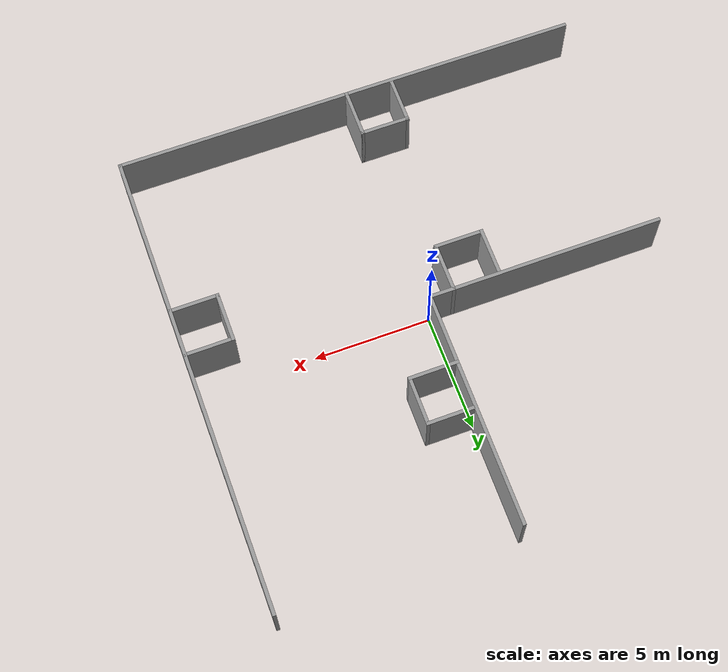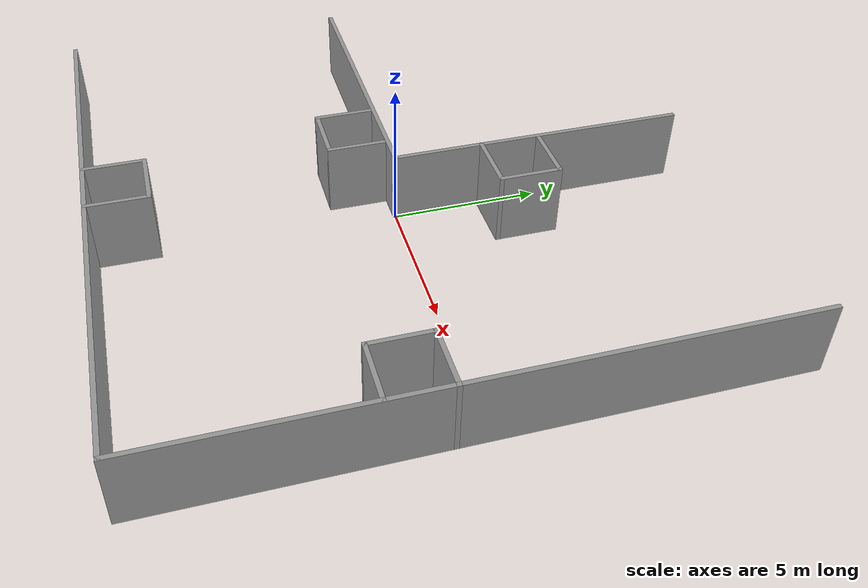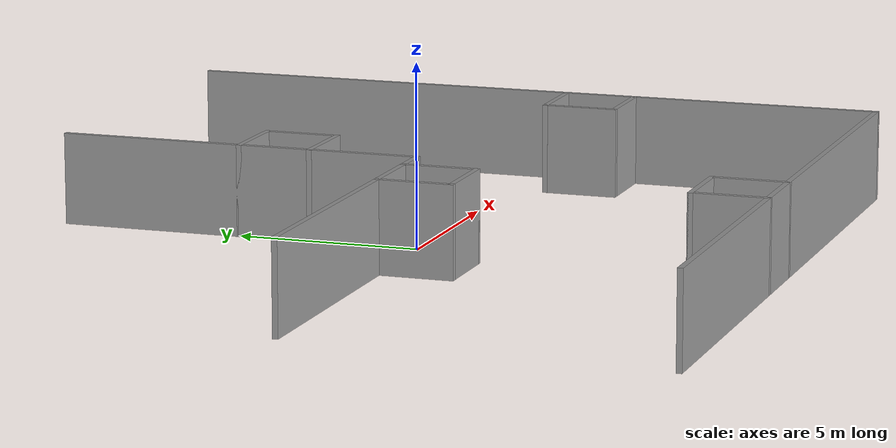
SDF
<?xml version='1.0'?>
<sdf version='1.6'>
  <model name='part_l'>
    <link name='Wall_27'>
      <pose frame=''>-0.000179 -10 0 0 -0 0</pose>
      <self_collide>0</self_collide>
      <kinematic>0</kinematic>
      <visual name='Wall_27_Visual'>
        <pose frame=''>0 0 1.25 0 -0 0</pose>
        <geometry>
          <box>
            <size>20.15 0.15 2.5</size>
          </box>
        </geometry>
        <material>
          <script>
            <uri>file://media/materials/scripts/gazebo.material</uri>
            <name>Gazebo/Grey</name>
          </script>
          <ambient>1 1 1 1</ambient>
          <diffuse>0.7 0.7 0.7 1</diffuse>
          <specular>0.01 0.01 0.01 1</specular>
          <emissive>0 0 0 1</emissive>
        </material>
        <cast_shadows>1</cast_shadows>
        <transparency>0</transparency>
      </visual>
      <collision name='Wall_27_Collision'>
        <laser_retro>0</laser_retro>
        <max_contacts>10</max_contacts>
        <pose frame=''>0 0 1.25 0 -0 0</pose>
        <geometry>
          <box>
            <size>20.15 0.15 2.5</size>
          </box>
        </geometry>
        <surface>
          <friction>
            <ode>
              <mu>1</mu>
              <mu2>1</mu2>
              <fdir1>0 0 0</fdir1>
              <slip1>0</slip1>
              <slip2>0</slip2>
            </ode>
            <torsional>
              <coefficient>1</coefficient>
              <patch_radius>0</patch_radius>
              <surface_radius>0</surface_radius>
              <use_patch_radius>1</use_patch_radius>
              <ode>
                <slip>0</slip>
              </ode>
            </torsional>
          </friction>
          <bounce>
            <restitution_coefficient>0</restitution_coefficient>
            <threshold>1e+06</threshold>
          </bounce>
          <contact>
            <collide_without_contact>0</collide_without_contact>
            <collide_without_contact_bitmask>1</collide_without_contact_bitmask>
            <collide_bitmask>1</collide_bitmask>
            <ode>
              <soft_cfm>0</soft_cfm>
              <soft_erp>0.2</soft_erp>
              <kp>1e+13</kp>
              <kd>1</kd>
              <max_vel>0.01</max_vel>
              <min_depth>0</min_depth>
            </ode>
            <bullet>
              <split_impulse>1</split_impulse>
              <split_impulse_penetration_threshold>-0.01</split_impulse_penetration_threshold>
              <soft_cfm>0</soft_cfm>
              <soft_erp>0.2</soft_erp>
              <kp>1e+13</kp>
              <kd>1</kd>
            </bullet>
          </contact>
        </surface>
      </collision>
    </link>
    <link name='Wall_28'>
      <pose frame=''>9.99982 0 0 0 -0 1.5708</pose>
      <self_collide>0</self_collide>
      <kinematic>0</kinematic>
      <visual name='Wall_28_Visual'>
        <pose frame=''>0 0 1.25 0 -0 0</pose>
        <geometry>
          <box>
            <size>20.15 0.15 2.5</size>
          </box>
        </geometry>
        <material>
          <script>
            <uri>file://media/materials/scripts/gazebo.material</uri>
            <name>Gazebo/Grey</name>
          </script>
          <ambient>1 1 1 1</ambient>
          <diffuse>0.7 0.7 0.7 1</diffuse>
          <specular>0.01 0.01 0.01 1</specular>
          <emissive>0 0 0 1</emissive>
        </material>
        <cast_shadows>1</cast_shadows>
        <transparency>0</transparency>
      </visual>
      <collision name='Wall_28_Collision'>
        <laser_retro>0</laser_retro>
        <max_contacts>10</max_contacts>
        <pose frame=''>0 0 1.25 0 -0 0</pose>
        <geometry>
          <box>
            <size>20.15 0.15 2.5</size>
          </box>
        </geometry>
        <surface>
          <friction>
            <ode>
              <mu>1</mu>
              <mu2>1</mu2>
              <fdir1>0 0 0</fdir1>
              <slip1>0</slip1>
              <slip2>0</slip2>
            </ode>
            <torsional>
              <coefficient>1</coefficient>
              <patch_radius>0</patch_radius>
              <surface_radius>0</surface_radius>
              <use_patch_radius>1</use_patch_radius>
              <ode>
                <slip>0</slip>
              </ode>
            </torsional>
          </friction>
          <bounce>
            <restitution_coefficient>0</restitution_coefficient>
            <threshold>1e+06</threshold>
          </bounce>
          <contact>
            <collide_without_contact>0</collide_without_contact>
            <collide_without_contact_bitmask>1</collide_without_contact_bitmask>
            <collide_bitmask>1</collide_bitmask>
            <ode>
              <soft_cfm>0</soft_cfm>
              <soft_erp>0.2</soft_erp>
              <kp>1e+13</kp>
              <kd>1</kd>
              <max_vel>0.01</max_vel>
              <min_depth>0</min_depth>
            </ode>
            <bullet>
              <split_impulse>1</split_impulse>
              <split_impulse_penetration_threshold>-0.01</split_impulse_penetration_threshold>
              <soft_cfm>0</soft_cfm>
              <soft_erp>0.2</soft_erp>
              <kp>1e+13</kp>
              <kd>1</kd>
            </bullet>
          </contact>
        </surface>
      </collision>
    </link>
    <link name='Wall_30'>
      <pose frame=''>-5.00018 0 0 0 -0 0</pose>
      <self_collide>0</self_collide>
      <kinematic>0</kinematic>
      <visual name='Wall_30_Visual'>
        <pose frame=''>0 0 1.25 0 -0 0</pose>
        <geometry>
          <box>
            <size>10.15 0.15 2.5</size>
          </box>
        </geometry>
        <material>
          <script>
            <uri>file://media/materials/scripts/gazebo.material</uri>
            <name>Gazebo/Grey</name>
          </script>
          <ambient>1 1 1 1</ambient>
          <diffuse>0.7 0.7 0.7 1</diffuse>
          <specular>0.01 0.01 0.01 1</specular>
          <emissive>0 0 0 1</emissive>
        </material>
        <cast_shadows>1</cast_shadows>
        <transparency>0</transparency>
      </visual>
      <collision name='Wall_30_Collision'>
        <laser_retro>0</laser_retro>
        <max_contacts>10</max_contacts>
        <pose frame=''>0 0 1.25 0 -0 0</pose>
        <geometry>
          <box>
            <size>10.15 0.15 2.5</size>
          </box>
        </geometry>
        <surface>
          <friction>
            <ode>
              <mu>1</mu>
              <mu2>1</mu2>
              <fdir1>0 0 0</fdir1>
              <slip1>0</slip1>
              <slip2>0</slip2>
            </ode>
            <torsional>
              <coefficient>1</coefficient>
              <patch_radius>0</patch_radius>
              <surface_radius>0</surface_radius>
              <use_patch_radius>1</use_patch_radius>
              <ode>
                <slip>0</slip>
              </ode>
            </torsional>
          </friction>
          <bounce>
            <restitution_coefficient>0</restitution_coefficient>
            <threshold>1e+06</threshold>
          </bounce>
          <contact>
            <collide_without_contact>0</collide_without_contact>
            <collide_without_contact_bitmask>1</collide_without_contact_bitmask>
            <collide_bitmask>1</collide_bitmask>
            <ode>
              <soft_cfm>0</soft_cfm>
              <soft_erp>0.2</soft_erp>
              <kp>1e+13</kp>
              <kd>1</kd>
              <max_vel>0.01</max_vel>
              <min_depth>0</min_depth>
            </ode>
            <bullet>
              <split_impulse>1</split_impulse>
              <split_impulse_penetration_threshold>-0.01</split_impulse_penetration_threshold>
              <soft_cfm>0</soft_cfm>
              <soft_erp>0.2</soft_erp>
              <kp>1e+13</kp>
              <kd>1</kd>
            </bullet>
          </contact>
        </surface>
      </collision>
    </link>
    <link name='Wall_31'>
      <pose frame=''>-0.000179 5 0 0 -0 1.5708</pose>
      <self_collide>0</self_collide>
      <kinematic>0</kinematic>
      <visual name='Wall_31_Visual'>
        <pose frame=''>0 0 1.25 0 -0 0</pose>
        <geometry>
          <box>
            <size>10.15 0.15 2.5</size>
          </box>
        </geometry>
        <material>
          <script>
            <uri>file://media/materials/scripts/gazebo.material</uri>
            <name>Gazebo/Grey</name>
          </script>
          <ambient>1 1 1 1</ambient>
          <diffuse>0.7 0.7 0.7 1</diffuse>
          <specular>0.01 0.01 0.01 1</specular>
          <emissive>0 0 0 1</emissive>
        </material>
        <cast_shadows>1</cast_shadows>
        <transparency>0</transparency>
      </visual>
      <collision name='Wall_31_Collision'>
        <laser_retro>0</laser_retro>
        <max_contacts>10</max_contacts>
        <pose frame=''>0 0 1.25 0 -0 0</pose>
        <geometry>
          <box>
            <size>10.15 0.15 2.5</size>
          </box>
        </geometry>
        <surface>
          <friction>
            <ode>
              <mu>1</mu>
              <mu2>1</mu2>
              <fdir1>0 0 0</fdir1>
              <slip1>0</slip1>
              <slip2>0</slip2>
            </ode>
            <torsional>
              <coefficient>1</coefficient>
              <patch_radius>0</patch_radius>
              <surface_radius>0</surface_radius>
              <use_patch_radius>1</use_patch_radius>
              <ode>
                <slip>0</slip>
              </ode>
            </torsional>
          </friction>
          <bounce>
            <restitution_coefficient>0</restitution_coefficient>
            <threshold>1e+06</threshold>
          </bounce>
          <contact>
            <collide_without_contact>0</collide_without_contact>
            <collide_without_contact_bitmask>1</collide_without_contact_bitmask>
            <collide_bitmask>1</collide_bitmask>
            <ode>
              <soft_cfm>0</soft_cfm>
              <soft_erp>0.2</soft_erp>
              <kp>1e+13</kp>
              <kd>1</kd>
              <max_vel>0.01</max_vel>
              <min_depth>0</min_depth>
            </ode>
            <bullet>
              <split_impulse>1</split_impulse>
              <split_impulse_penetration_threshold>-0.01</split_impulse_penetration_threshold>
              <soft_cfm>0</soft_cfm>
              <soft_erp>0.2</soft_erp>
              <kp>1e+13</kp>
              <kd>1</kd>
            </bullet>
          </contact>
        </surface>
      </collision>
    </link>
    <link name='Wall_33'>
      <pose frame=''>-2.00018 -9 0 0 -0 1.5708</pose>
      <self_collide>0</self_collide>
      <kinematic>0</kinematic>
      <visual name='Wall_33_Visual'>
        <pose frame=''>0 0 1.25 0 -0 0</pose>
        <geometry>
          <box>
            <size>2.15 0.15 2.5</size>
          </box>
        </geometry>
        <material>
          <script>
            <uri>file://media/materials/scripts/gazebo.material</uri>
            <name>Gazebo/Grey</name>
          </script>
          <ambient>1 1 1 1</ambient>
          <diffuse>0.7 0.7 0.7 1</diffuse>
          <specular>0.01 0.01 0.01 1</specular>
          <emissive>0 0 0 1</emissive>
        </material>
        <cast_shadows>1</cast_shadows>
        <transparency>0</transparency>
      </visual>
      <collision name='Wall_33_Collision'>
        <laser_retro>0</laser_retro>
        <max_contacts>10</max_contacts>
        <pose frame=''>0 0 1.25 0 -0 0</pose>
        <geometry>
          <box>
            <size>2.15 0.15 2.5</size>
          </box>
        </geometry>
        <surface>
          <friction>
            <ode>
              <mu>1</mu>
              <mu2>1</mu2>
              <fdir1>0 0 0</fdir1>
              <slip1>0</slip1>
              <slip2>0</slip2>
            </ode>
            <torsional>
              <coefficient>1</coefficient>
              <patch_radius>0</patch_radius>
              <surface_radius>0</surface_radius>
              <use_patch_radius>1</use_patch_radius>
              <ode>
                <slip>0</slip>
              </ode>
            </torsional>
          </friction>
          <bounce>
            <restitution_coefficient>0</restitution_coefficient>
            <threshold>1e+06</threshold>
          </bounce>
          <contact>
            <collide_without_contact>0</collide_without_contact>
            <collide_without_contact_bitmask>1</collide_without_contact_bitmask>
            <collide_bitmask>1</collide_bitmask>
            <ode>
              <soft_cfm>0</soft_cfm>
              <soft_erp>0.2</soft_erp>
              <kp>1e+13</kp>
              <kd>1</kd>
              <max_vel>0.01</max_vel>
              <min_depth>0</min_depth>
            </ode>
            <bullet>
              <split_impulse>1</split_impulse>
              <split_impulse_penetration_threshold>-0.01</split_impulse_penetration_threshold>
              <soft_cfm>0</soft_cfm>
              <soft_erp>0.2</soft_erp>
              <kp>1e+13</kp>
              <kd>1</kd>
            </bullet>
          </contact>
        </surface>
      </collision>
    </link>
    <link name='Wall_34'>
      <pose frame=''>-1.00018 -8 0 0 -0 0</pose>
      <self_collide>0</self_collide>
      <kinematic>0</kinematic>
      <visual name='Wall_34_Visual'>
        <pose frame=''>0 0 1.25 0 -0 0</pose>
        <geometry>
          <box>
            <size>2.15 0.15 2.5</size>
          </box>
        </geometry>
        <material>
          <script>
            <uri>file://media/materials/scripts/gazebo.material</uri>
            <name>Gazebo/Grey</name>
          </script>
          <ambient>1 1 1 1</ambient>
          <diffuse>0.7 0.7 0.7 1</diffuse>
          <specular>0.01 0.01 0.01 1</specular>
          <emissive>0 0 0 1</emissive>
        </material>
        <cast_shadows>1</cast_shadows>
        <transparency>0</transparency>
      </visual>
      <collision name='Wall_34_Collision'>
        <laser_retro>0</laser_retro>
        <max_contacts>10</max_contacts>
        <pose frame=''>0 0 1.25 0 -0 0</pose>
        <geometry>
          <box>
            <size>2.15 0.15 2.5</size>
          </box>
        </geometry>
        <surface>
          <friction>
            <ode>
              <mu>1</mu>
              <mu2>1</mu2>
              <fdir1>0 0 0</fdir1>
              <slip1>0</slip1>
              <slip2>0</slip2>
            </ode>
            <torsional>
              <coefficient>1</coefficient>
              <patch_radius>0</patch_radius>
              <surface_radius>0</surface_radius>
              <use_patch_radius>1</use_patch_radius>
              <ode>
                <slip>0</slip>
              </ode>
            </torsional>
          </friction>
          <bounce>
            <restitution_coefficient>0</restitution_coefficient>
            <threshold>1e+06</threshold>
          </bounce>
          <contact>
            <collide_without_contact>0</collide_without_contact>
            <collide_without_contact_bitmask>1</collide_without_contact_bitmask>
            <collide_bitmask>1</collide_bitmask>
            <ode>
              <soft_cfm>0</soft_cfm>
              <soft_erp>0.2</soft_erp>
              <kp>1e+13</kp>
              <kd>1</kd>
              <max_vel>0.01</max_vel>
              <min_depth>0</min_depth>
            </ode>
            <bullet>
              <split_impulse>1</split_impulse>
              <split_impulse_penetration_threshold>-0.01</split_impulse_penetration_threshold>
              <soft_cfm>0</soft_cfm>
              <soft_erp>0.2</soft_erp>
              <kp>1e+13</kp>
              <kd>1</kd>
            </bullet>
          </contact>
        </surface>
      </collision>
    </link>
    <link name='Wall_35'>
      <pose frame=''>-0.000179 -9 0 0 0 -1.5708</pose>
      <self_collide>0</self_collide>
      <kinematic>0</kinematic>
      <visual name='Wall_35_Visual'>
        <pose frame=''>0 0 1.25 0 -0 0</pose>
        <geometry>
          <box>
            <size>2.15 0.15 2.5</size>
          </box>
        </geometry>
        <material>
          <script>
            <uri>file://media/materials/scripts/gazebo.material</uri>
            <name>Gazebo/Grey</name>
          </script>
          <ambient>1 1 1 1</ambient>
          <diffuse>0.7 0.7 0.7 1</diffuse>
          <specular>0.01 0.01 0.01 1</specular>
          <emissive>0 0 0 1</emissive>
        </material>
        <cast_shadows>1</cast_shadows>
        <transparency>0</transparency>
      </visual>
      <collision name='Wall_35_Collision'>
        <laser_retro>0</laser_retro>
        <max_contacts>10</max_contacts>
        <pose frame=''>0 0 1.25 0 -0 0</pose>
        <geometry>
          <box>
            <size>2.15 0.15 2.5</size>
          </box>
        </geometry>
        <surface>
          <friction>
            <ode>
              <mu>1</mu>
              <mu2>1</mu2>
              <fdir1>0 0 0</fdir1>
              <slip1>0</slip1>
              <slip2>0</slip2>
            </ode>
            <torsional>
              <coefficient>1</coefficient>
              <patch_radius>0</patch_radius>
              <surface_radius>0</surface_radius>
              <use_patch_radius>1</use_patch_radius>
              <ode>
                <slip>0</slip>
              </ode>
            </torsional>
          </friction>
          <bounce>
            <restitution_coefficient>0</restitution_coefficient>
            <threshold>1e+06</threshold>
          </bounce>
          <contact>
            <collide_without_contact>0</collide_without_contact>
            <collide_without_contact_bitmask>1</collide_without_contact_bitmask>
            <collide_bitmask>1</collide_bitmask>
            <ode>
              <soft_cfm>0</soft_cfm>
              <soft_erp>0.2</soft_erp>
              <kp>1e+13</kp>
              <kd>1</kd>
              <max_vel>0.01</max_vel>
              <min_depth>0</min_depth>
            </ode>
            <bullet>
              <split_impulse>1</split_impulse>
              <split_impulse_penetration_threshold>-0.01</split_impulse_penetration_threshold>
              <soft_cfm>0</soft_cfm>
              <soft_erp>0.2</soft_erp>
              <kp>1e+13</kp>
              <kd>1</kd>
            </bullet>
          </contact>
        </surface>
      </collision>
    </link>
    <link name='Wall_37'>
      <pose frame=''>8.99982 -1 0 0 -0 3.14159</pose>
      <self_collide>0</self_collide>
      <kinematic>0</kinematic>
      <visual name='Wall_37_Visual'>
        <pose frame=''>0 0 1.25 0 -0 0</pose>
        <geometry>
          <box>
            <size>2.15072 0.15 2.5</size>
          </box>
        </geometry>
        <material>
          <script>
            <uri>file://media/materials/scripts/gazebo.material</uri>
            <name>Gazebo/Grey</name>
          </script>
          <ambient>1 1 1 1</ambient>
          <diffuse>0.7 0.7 0.7 1</diffuse>
          <specular>0.01 0.01 0.01 1</specular>
          <emissive>0 0 0 1</emissive>
        </material>
        <cast_shadows>1</cast_shadows>
        <transparency>0</transparency>
      </visual>
      <collision name='Wall_37_Collision'>
        <laser_retro>0</laser_retro>
        <max_contacts>10</max_contacts>
        <pose frame=''>0 0 1.25 0 -0 0</pose>
        <geometry>
          <box>
            <size>2.15072 0.15 2.5</size>
          </box>
        </geometry>
        <surface>
          <friction>
            <ode>
              <mu>1</mu>
              <mu2>1</mu2>
              <fdir1>0 0 0</fdir1>
              <slip1>0</slip1>
              <slip2>0</slip2>
            </ode>
            <torsional>
              <coefficient>1</coefficient>
              <patch_radius>0</patch_radius>
              <surface_radius>0</surface_radius>
              <use_patch_radius>1</use_patch_radius>
              <ode>
                <slip>0</slip>
              </ode>
            </torsional>
          </friction>
          <bounce>
            <restitution_coefficient>0</restitution_coefficient>
            <threshold>1e+06</threshold>
          </bounce>
          <contact>
            <collide_without_contact>0</collide_without_contact>
            <collide_without_contact_bitmask>1</collide_without_contact_bitmask>
            <collide_bitmask>1</collide_bitmask>
            <ode>
              <soft_cfm>0</soft_cfm>
              <soft_erp>0.2</soft_erp>
              <kp>1e+13</kp>
              <kd>1</kd>
              <max_vel>0.01</max_vel>
              <min_depth>0</min_depth>
            </ode>
            <bullet>
              <split_impulse>1</split_impulse>
              <split_impulse_penetration_threshold>-0.01</split_impulse_penetration_threshold>
              <soft_cfm>0</soft_cfm>
              <soft_erp>0.2</soft_erp>
              <kp>1e+13</kp>
              <kd>1</kd>
            </bullet>
          </contact>
        </surface>
      </collision>
    </link>
    <link name='Wall_38'>
      <pose frame=''>7.99982 -2 0 0 0 -1.5708</pose>
      <self_collide>0</self_collide>
      <kinematic>0</kinematic>
      <visual name='Wall_38_Visual'>
        <pose frame=''>0 0 1.25 0 -0 0</pose>
        <geometry>
          <box>
            <size>2.15 0.15 2.5</size>
          </box>
        </geometry>
        <material>
          <script>
            <uri>file://media/materials/scripts/gazebo.material</uri>
            <name>Gazebo/Grey</name>
          </script>
          <ambient>1 1 1 1</ambient>
          <diffuse>0.7 0.7 0.7 1</diffuse>
          <specular>0.01 0.01 0.01 1</specular>
          <emissive>0 0 0 1</emissive>
        </material>
        <cast_shadows>1</cast_shadows>
        <transparency>0</transparency>
      </visual>
      <collision name='Wall_38_Collision'>
        <laser_retro>0</laser_retro>
        <max_contacts>10</max_contacts>
        <pose frame=''>0 0 1.25 0 -0 0</pose>
        <geometry>
          <box>
            <size>2.15 0.15 2.5</size>
          </box>
        </geometry>
        <surface>
          <friction>
            <ode>
              <mu>1</mu>
              <mu2>1</mu2>
              <fdir1>0 0 0</fdir1>
              <slip1>0</slip1>
              <slip2>0</slip2>
            </ode>
            <torsional>
              <coefficient>1</coefficient>
              <patch_radius>0</patch_radius>
              <surface_radius>0</surface_radius>
              <use_patch_radius>1</use_patch_radius>
              <ode>
                <slip>0</slip>
              </ode>
            </torsional>
          </friction>
          <bounce>
            <restitution_coefficient>0</restitution_coefficient>
            <threshold>1e+06</threshold>
          </bounce>
          <contact>
            <collide_without_contact>0</collide_without_contact>
            <collide_without_contact_bitmask>1</collide_without_contact_bitmask>
            <collide_bitmask>1</collide_bitmask>
            <ode>
              <soft_cfm>0</soft_cfm>
              <soft_erp>0.2</soft_erp>
              <kp>1e+13</kp>
              <kd>1</kd>
              <max_vel>0.01</max_vel>
              <min_depth>0</min_depth>
            </ode>
            <bullet>
              <split_impulse>1</split_impulse>
              <split_impulse_penetration_threshold>-0.01</split_impulse_penetration_threshold>
              <soft_cfm>0</soft_cfm>
              <soft_erp>0.2</soft_erp>
              <kp>1e+13</kp>
              <kd>1</kd>
            </bullet>
          </contact>
        </surface>
      </collision>
    </link>
    <link name='Wall_39'>
      <pose frame=''>8.99982 -3 0 0 -0 0</pose>
      <self_collide>0</self_collide>
      <kinematic>0</kinematic>
      <visual name='Wall_39_Visual'>
        <pose frame=''>0 0 1.25 0 -0 0</pose>
        <geometry>
          <box>
            <size>2.15 0.15 2.5</size>
          </box>
        </geometry>
        <material>
          <script>
            <uri>file://media/materials/scripts/gazebo.material</uri>
            <name>Gazebo/Grey</name>
          </script>
          <ambient>1 1 1 1</ambient>
          <diffuse>0.7 0.7 0.7 1</diffuse>
          <specular>0.01 0.01 0.01 1</specular>
          <emissive>0 0 0 1</emissive>
        </material>
        <cast_shadows>1</cast_shadows>
        <transparency>0</transparency>
      </visual>
      <collision name='Wall_39_Collision'>
        <laser_retro>0</laser_retro>
        <max_contacts>10</max_contacts>
        <pose frame=''>0 0 1.25 0 -0 0</pose>
        <geometry>
          <box>
            <size>2.15 0.15 2.5</size>
          </box>
        </geometry>
        <surface>
          <friction>
            <ode>
              <mu>1</mu>
              <mu2>1</mu2>
              <fdir1>0 0 0</fdir1>
              <slip1>0</slip1>
              <slip2>0</slip2>
            </ode>
            <torsional>
              <coefficient>1</coefficient>
              <patch_radius>0</patch_radius>
              <surface_radius>0</surface_radius>
              <use_patch_radius>1</use_patch_radius>
              <ode>
                <slip>0</slip>
              </ode>
            </torsional>
          </friction>
          <bounce>
            <restitution_coefficient>0</restitution_coefficient>
            <threshold>1e+06</threshold>
          </bounce>
          <contact>
            <collide_without_contact>0</collide_without_contact>
            <collide_without_contact_bitmask>1</collide_without_contact_bitmask>
            <collide_bitmask>1</collide_bitmask>
            <ode>
              <soft_cfm>0</soft_cfm>
              <soft_erp>0.2</soft_erp>
              <kp>1e+13</kp>
              <kd>1</kd>
              <max_vel>0.01</max_vel>
              <min_depth>0</min_depth>
            </ode>
            <bullet>
              <split_impulse>1</split_impulse>
              <split_impulse_penetration_threshold>-0.01</split_impulse_penetration_threshold>
              <soft_cfm>0</soft_cfm>
              <soft_erp>0.2</soft_erp>
              <kp>1e+13</kp>
              <kd>1</kd>
            </bullet>
          </contact>
        </surface>
      </collision>
    </link>
    <link name='Wall_41'>
      <pose frame=''>0.999821 5 0 0 -0 0</pose>
      <self_collide>0</self_collide>
      <kinematic>0</kinematic>
      <visual name='Wall_41_Visual'>
        <pose frame=''>0 0 1.25 0 -0 0</pose>
        <geometry>
          <box>
            <size>2.15 0.15 2.5</size>
          </box>
        </geometry>
        <material>
          <script>
            <uri>file://media/materials/scripts/gazebo.material</uri>
            <name>Gazebo/Grey</name>
          </script>
          <ambient>1 1 1 1</ambient>
          <diffuse>0.7 0.7 0.7 1</diffuse>
          <specular>0.01 0.01 0.01 1</specular>
          <emissive>0 0 0 1</emissive>
        </material>
        <cast_shadows>1</cast_shadows>
        <transparency>0</transparency>
      </visual>
      <collision name='Wall_41_Collision'>
        <laser_retro>0</laser_retro>
        <max_contacts>10</max_contacts>
        <pose frame=''>0 0 1.25 0 -0 0</pose>
        <geometry>
          <box>
            <size>2.15 0.15 2.5</size>
          </box>
        </geometry>
        <surface>
          <friction>
            <ode>
              <mu>1</mu>
              <mu2>1</mu2>
              <fdir1>0 0 0</fdir1>
              <slip1>0</slip1>
              <slip2>0</slip2>
            </ode>
            <torsional>
              <coefficient>1</coefficient>
              <patch_radius>0</patch_radius>
              <surface_radius>0</surface_radius>
              <use_patch_radius>1</use_patch_radius>
              <ode>
                <slip>0</slip>
              </ode>
            </torsional>
          </friction>
          <bounce>
            <restitution_coefficient>0</restitution_coefficient>
            <threshold>1e+06</threshold>
          </bounce>
          <contact>
            <collide_without_contact>0</collide_without_contact>
            <collide_without_contact_bitmask>1</collide_without_contact_bitmask>
            <collide_bitmask>1</collide_bitmask>
            <ode>
              <soft_cfm>0</soft_cfm>
              <soft_erp>0.2</soft_erp>
              <kp>1e+13</kp>
              <kd>1</kd>
              <max_vel>0.01</max_vel>
              <min_depth>0</min_depth>
            </ode>
            <bullet>
              <split_impulse>1</split_impulse>
              <split_impulse_penetration_threshold>-0.01</split_impulse_penetration_threshold>
              <soft_cfm>0</soft_cfm>
              <soft_erp>0.2</soft_erp>
              <kp>1e+13</kp>
              <kd>1</kd>
            </bullet>
          </contact>
        </surface>
      </collision>
    </link>
    <link name='Wall_42'>
      <pose frame=''>1.99982 4 0 0 0 -1.5708</pose>
      <self_collide>0</self_collide>
      <kinematic>0</kinematic>
      <visual name='Wall_42_Visual'>
        <pose frame=''>0 0 1.25 0 -0 0</pose>
        <geometry>
          <box>
            <size>2.15 0.15 2.5</size>
          </box>
        </geometry>
        <material>
          <script>
            <uri>file://media/materials/scripts/gazebo.material</uri>
            <name>Gazebo/Grey</name>
          </script>
          <ambient>1 1 1 1</ambient>
          <diffuse>0.7 0.7 0.7 1</diffuse>
          <specular>0.01 0.01 0.01 1</specular>
          <emissive>0 0 0 1</emissive>
        </material>
        <cast_shadows>1</cast_shadows>
        <transparency>0</transparency>
      </visual>
      <collision name='Wall_42_Collision'>
        <laser_retro>0</laser_retro>
        <max_contacts>10</max_contacts>
        <pose frame=''>0 0 1.25 0 -0 0</pose>
        <geometry>
          <box>
            <size>2.15 0.15 2.5</size>
          </box>
        </geometry>
        <surface>
          <friction>
            <ode>
              <mu>1</mu>
              <mu2>1</mu2>
              <fdir1>0 0 0</fdir1>
              <slip1>0</slip1>
              <slip2>0</slip2>
            </ode>
            <torsional>
              <coefficient>1</coefficient>
              <patch_radius>0</patch_radius>
              <surface_radius>0</surface_radius>
              <use_patch_radius>1</use_patch_radius>
              <ode>
                <slip>0</slip>
              </ode>
            </torsional>
          </friction>
          <bounce>
            <restitution_coefficient>0</restitution_coefficient>
            <threshold>1e+06</threshold>
          </bounce>
          <contact>
            <collide_without_contact>0</collide_without_contact>
            <collide_without_contact_bitmask>1</collide_without_contact_bitmask>
            <collide_bitmask>1</collide_bitmask>
            <ode>
              <soft_cfm>0</soft_cfm>
              <soft_erp>0.2</soft_erp>
              <kp>1e+13</kp>
              <kd>1</kd>
              <max_vel>0.01</max_vel>
              <min_depth>0</min_depth>
            </ode>
            <bullet>
              <split_impulse>1</split_impulse>
              <split_impulse_penetration_threshold>-0.01</split_impulse_penetration_threshold>
              <soft_cfm>0</soft_cfm>
              <soft_erp>0.2</soft_erp>
              <kp>1e+13</kp>
              <kd>1</kd>
            </bullet>
          </contact>
        </surface>
      </collision>
    </link>
    <link name='Wall_43'>
      <pose frame=''>0.999821 3 0 0 -0 3.14159</pose>
      <self_collide>0</self_collide>
      <kinematic>0</kinematic>
      <visual name='Wall_43_Visual'>
        <pose frame=''>0 0 1.25 0 -0 0</pose>
        <geometry>
          <box>
            <size>2.15 0.15 2.5</size>
          </box>
        </geometry>
        <material>
          <script>
            <uri>file://media/materials/scripts/gazebo.material</uri>
            <name>Gazebo/Grey</name>
          </script>
          <ambient>1 1 1 1</ambient>
          <diffuse>0.7 0.7 0.7 1</diffuse>
          <specular>0.01 0.01 0.01 1</specular>
          <emissive>0 0 0 1</emissive>
        </material>
        <cast_shadows>1</cast_shadows>
        <transparency>0</transparency>
      </visual>
      <collision name='Wall_43_Collision'>
        <laser_retro>0</laser_retro>
        <max_contacts>10</max_contacts>
        <pose frame=''>0 0 1.25 0 -0 0</pose>
        <geometry>
          <box>
            <size>2.15 0.15 2.5</size>
          </box>
        </geometry>
        <surface>
          <friction>
            <ode>
              <mu>1</mu>
              <mu2>1</mu2>
              <fdir1>0 0 0</fdir1>
              <slip1>0</slip1>
              <slip2>0</slip2>
            </ode>
            <torsional>
              <coefficient>1</coefficient>
              <patch_radius>0</patch_radius>
              <surface_radius>0</surface_radius>
              <use_patch_radius>1</use_patch_radius>
              <ode>
                <slip>0</slip>
              </ode>
            </torsional>
          </friction>
          <bounce>
            <restitution_coefficient>0</restitution_coefficient>
            <threshold>1e+06</threshold>
          </bounce>
          <contact>
            <collide_without_contact>0</collide_without_contact>
            <collide_without_contact_bitmask>1</collide_without_contact_bitmask>
            <collide_bitmask>1</collide_bitmask>
            <ode>
              <soft_cfm>0</soft_cfm>
              <soft_erp>0.2</soft_erp>
              <kp>1e+13</kp>
              <kd>1</kd>
              <max_vel>0.01</max_vel>
              <min_depth>0</min_depth>
            </ode>
            <bullet>
              <split_impulse>1</split_impulse>
              <split_impulse_penetration_threshold>-0.01</split_impulse_penetration_threshold>
              <soft_cfm>0</soft_cfm>
              <soft_erp>0.2</soft_erp>
              <kp>1e+13</kp>
              <kd>1</kd>
            </bullet>
          </contact>
        </surface>
      </collision>
    </link>
    <link name='Wall_45'>
      <pose frame=''>-3.00018 -1 0 0 0 -1.5708</pose>
      <self_collide>0</self_collide>
      <kinematic>0</kinematic>
      <visual name='Wall_45_Visual'>
        <pose frame=''>0 0 1.25 0 -0 0</pose>
        <geometry>
          <box>
            <size>2.15 0.15 2.5</size>
          </box>
        </geometry>
        <material>
          <script>
            <uri>file://media/materials/scripts/gazebo.material</uri>
            <name>Gazebo/Grey</name>
          </script>
          <ambient>1 1 1 1</ambient>
          <diffuse>0.7 0.7 0.7 1</diffuse>
          <specular>0.01 0.01 0.01 1</specular>
          <emissive>0 0 0 1</emissive>
        </material>
        <cast_shadows>1</cast_shadows>
        <transparency>0</transparency>
      </visual>
      <collision name='Wall_45_Collision'>
        <laser_retro>0</laser_retro>
        <max_contacts>10</max_contacts>
        <pose frame=''>0 0 1.25 0 -0 0</pose>
        <geometry>
          <box>
            <size>2.15 0.15 2.5</size>
          </box>
        </geometry>
        <surface>
          <friction>
            <ode>
              <mu>1</mu>
              <mu2>1</mu2>
              <fdir1>0 0 0</fdir1>
              <slip1>0</slip1>
              <slip2>0</slip2>
            </ode>
            <torsional>
              <coefficient>1</coefficient>
              <patch_radius>0</patch_radius>
              <surface_radius>0</surface_radius>
              <use_patch_radius>1</use_patch_radius>
              <ode>
                <slip>0</slip>
              </ode>
            </torsional>
          </friction>
          <bounce>
            <restitution_coefficient>0</restitution_coefficient>
            <threshold>1e+06</threshold>
          </bounce>
          <contact>
            <collide_without_contact>0</collide_without_contact>
            <collide_without_contact_bitmask>1</collide_without_contact_bitmask>
            <collide_bitmask>1</collide_bitmask>
            <ode>
              <soft_cfm>0</soft_cfm>
              <soft_erp>0.2</soft_erp>
              <kp>1e+13</kp>
              <kd>1</kd>
              <max_vel>0.01</max_vel>
              <min_depth>0</min_depth>
            </ode>
            <bullet>
              <split_impulse>1</split_impulse>
              <split_impulse_penetration_threshold>-0.01</split_impulse_penetration_threshold>
              <soft_cfm>0</soft_cfm>
              <soft_erp>0.2</soft_erp>
              <kp>1e+13</kp>
              <kd>1</kd>
            </bullet>
          </contact>
        </surface>
      </collision>
    </link>
    <link name='Wall_46'>
      <pose frame=''>-2.00018 -2 0 0 -0 0</pose>
      <self_collide>0</self_collide>
      <kinematic>0</kinematic>
      <visual name='Wall_46_Visual'>
        <pose frame=''>0 0 1.25 0 -0 0</pose>
        <geometry>
          <box>
            <size>2.15 0.15 2.5</size>
          </box>
        </geometry>
        <material>
          <script>
            <uri>file://media/materials/scripts/gazebo.material</uri>
            <name>Gazebo/Grey</name>
          </script>
          <ambient>1 1 1 1</ambient>
          <diffuse>0.7 0.7 0.7 1</diffuse>
          <specular>0.01 0.01 0.01 1</specular>
          <emissive>0 0 0 1</emissive>
        </material>
        <cast_shadows>1</cast_shadows>
        <transparency>0</transparency>
      </visual>
      <collision name='Wall_46_Collision'>
        <laser_retro>0</laser_retro>
        <max_contacts>10</max_contacts>
        <pose frame=''>0 0 1.25 0 -0 0</pose>
        <geometry>
          <box>
            <size>2.15 0.15 2.5</size>
          </box>
        </geometry>
        <surface>
          <friction>
            <ode>
              <mu>1</mu>
              <mu2>1</mu2>
              <fdir1>0 0 0</fdir1>
              <slip1>0</slip1>
              <slip2>0</slip2>
            </ode>
            <torsional>
              <coefficient>1</coefficient>
              <patch_radius>0</patch_radius>
              <surface_radius>0</surface_radius>
              <use_patch_radius>1</use_patch_radius>
              <ode>
                <slip>0</slip>
              </ode>
            </torsional>
          </friction>
          <bounce>
            <restitution_coefficient>0</restitution_coefficient>
            <threshold>1e+06</threshold>
          </bounce>
          <contact>
            <collide_without_contact>0</collide_without_contact>
            <collide_without_contact_bitmask>1</collide_without_contact_bitmask>
            <collide_bitmask>1</collide_bitmask>
            <ode>
              <soft_cfm>0</soft_cfm>
              <soft_erp>0.2</soft_erp>
              <kp>1e+13</kp>
              <kd>1</kd>
              <max_vel>0.01</max_vel>
              <min_depth>0</min_depth>
            </ode>
            <bullet>
              <split_impulse>1</split_impulse>
              <split_impulse_penetration_threshold>-0.01</split_impulse_penetration_threshold>
              <soft_cfm>0</soft_cfm>
              <soft_erp>0.2</soft_erp>
              <kp>1e+13</kp>
              <kd>1</kd>
            </bullet>
          </contact>
        </surface>
      </collision>
    </link>
    <link name='Wall_47'>
      <pose frame=''>-1.00018 -0.999 0 0 -0 1.5708</pose>
      <self_collide>0</self_collide>
      <kinematic>0</kinematic>
      <visual name='Wall_47_Visual'>
        <pose frame=''>0 0 1.25 0 -0 0</pose>
        <geometry>
          <box>
            <size>2.152 0.15 2.5</size>
          </box>
        </geometry>
        <material>
          <script>
            <uri>file://media/materials/scripts/gazebo.material</uri>
            <name>Gazebo/Grey</name>
          </script>
          <ambient>1 1 1 1</ambient>
          <diffuse>0.7 0.7 0.7 1</diffuse>
          <specular>0.01 0.01 0.01 1</specular>
          <emissive>0 0 0 1</emissive>
        </material>
        <cast_shadows>1</cast_shadows>
        <transparency>0</transparency>
      </visual>
      <collision name='Wall_47_Collision'>
        <laser_retro>0</laser_retro>
        <max_contacts>10</max_contacts>
        <pose frame=''>0 0 1.25 0 -0 0</pose>
        <geometry>
          <box>
            <size>2.152 0.15 2.5</size>
          </box>
        </geometry>
        <surface>
          <friction>
            <ode>
              <mu>1</mu>
              <mu2>1</mu2>
              <fdir1>0 0 0</fdir1>
              <slip1>0</slip1>
              <slip2>0</slip2>
            </ode>
            <torsional>
              <coefficient>1</coefficient>
              <patch_radius>0</patch_radius>
              <surface_radius>0</surface_radius>
              <use_patch_radius>1</use_patch_radius>
              <ode>
                <slip>0</slip>
              </ode>
            </torsional>
          </friction>
          <bounce>
            <restitution_coefficient>0</restitution_coefficient>
            <threshold>1e+06</threshold>
          </bounce>
          <contact>
            <collide_without_contact>0</collide_without_contact>
            <collide_without_contact_bitmask>1</collide_without_contact_bitmask>
            <collide_bitmask>1</collide_bitmask>
            <ode>
              <soft_cfm>0</soft_cfm>
              <soft_erp>0.2</soft_erp>
              <kp>1e+13</kp>
              <kd>1</kd>
              <max_vel>0.01</max_vel>
              <min_depth>0</min_depth>
            </ode>
            <bullet>
              <split_impulse>1</split_impulse>
              <split_impulse_penetration_threshold>-0.01</split_impulse_penetration_threshold>
              <soft_cfm>0</soft_cfm>
              <soft_erp>0.2</soft_erp>
              <kp>1e+13</kp>
              <kd>1</kd>
            </bullet>
          </contact>
        </surface>
      </collision>
    </link>
    <static>1</static>
    <allow_auto_disable>1</allow_auto_disable>
  </model>
</sdf>
